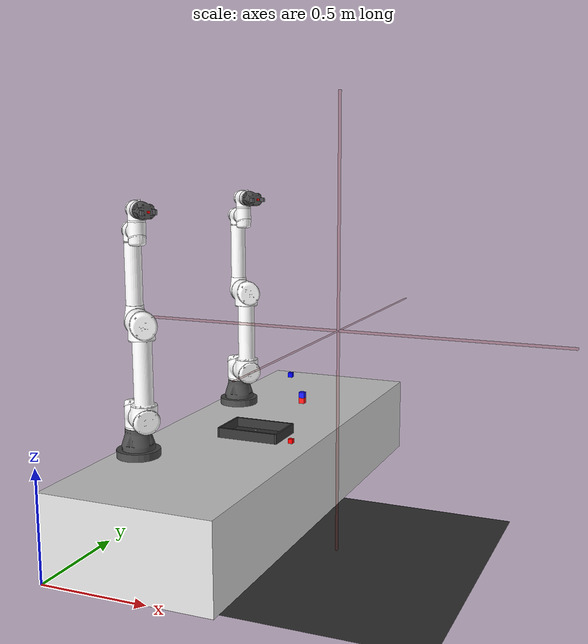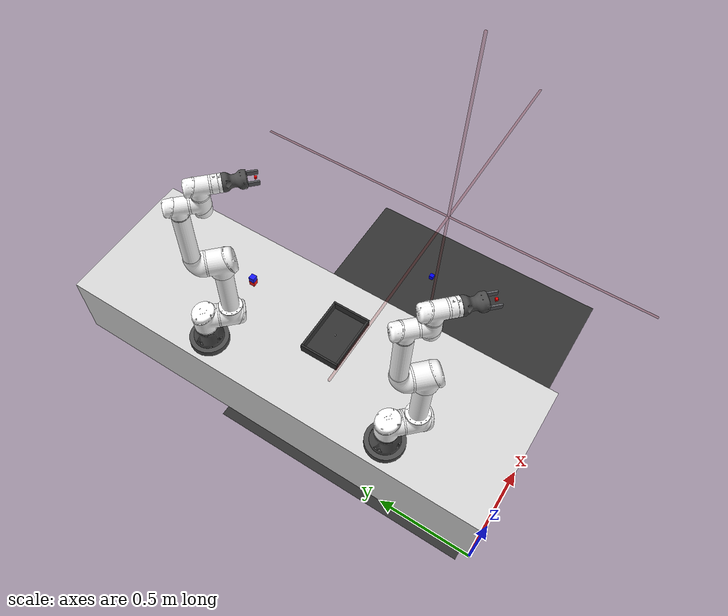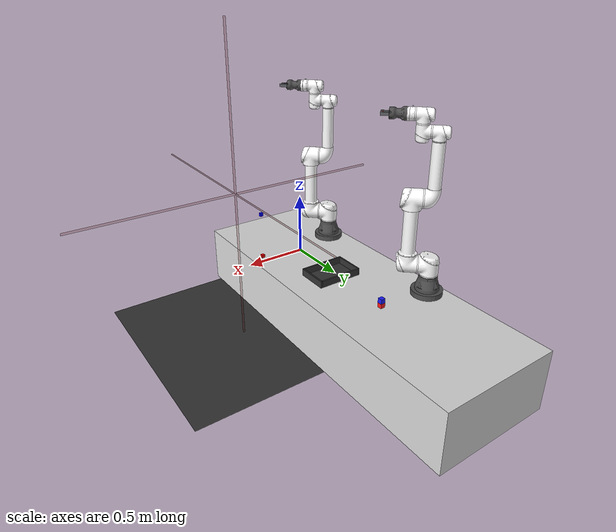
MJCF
<mujoco model="ur5">
	<compiler angle="radian" coordinate="local" meshdir="../assets/meshes" texturedir="../assets/textures"/>
	<option timestep="0.002"
            impratio="20"
			noslip_tolerance="1e-10"
            noslip_iterations="100"
            cone="elliptic">
	</option>

    <include file="shared.xml"/>

    <equality>
        <weld body1="robot1:mocap" body2="robot1:robotiq_tcp" solimp="0.9 0.95 0.001" solref="0.02 1"/>
        <weld body1="robot0:mocap" body2="robot0:robotiq_tcp" solimp="0.9 0.95 0.001" solref="0.02 1"/>
    </equality>

    <contact>
        <exclude body1="robot1:left_finger" body2="robot1:right_finger"/>
        <exclude body1="robot0:left_finger" body2="robot0:right_finger"/>
    </contact>

	<worldbody>
		<geom name="floor0" pos="0.8 0.75 0" size="0.85 0.7 1" type="plane" condim="3" material="floor_mat" />
		<body name="floor0" pos="0.8 0.75 0">
			<site name="target0" pos="0 0 0.5" size="0.01 0.01 0.01" rgba="1 0 0 1" type="box"/>
			<site name="target1" pos="0 0 0.8" size="0.01 0.01 0.01" rgba="0 0 1 1" type="box"/>
		</body>

        <!--Include the UR robot-->
        <include file="robot0.xml"/>
        <include file="robot1.xml"/>

		<body pos="0.4 1.2 0.2" name="table0">
			<geom size="0.4 1.2 0.2" type="box" name="table0" mass="2000" material="table_mat"/>
		</body>
        <body name="box" pos="0.475 1.075 0.4225">
            <joint name="box:joint" type="free"/>
            <body name="box_bottom" pos="0 0 -0.025" euler="0 0 0">
                <geom size="0.15 0.10 0.005" type="box" condim="3" name="box_bottom" material="block_mat" mass="5"/>
            </body>
            <body name="box_side:0" pos="0 -0.1 0" euler="0 0 0">
                <geom size="0.145 0.005 0.025" type="box" condim="3" name="box_side:0" material="block_mat" mass="5"/>
            </body>
            <body name="box_side:1" pos="0 0.1 0" euler="0 0 0">
                <geom size="0.145 0.005 0.025" type="box" condim="3" name="box_side:1" material="block_mat" mass="5"/>
            </body>
            <body name="box_side:2" pos="-0.15 0 0" euler="0 0 0">
                <geom size="0.005 0.105 0.025" type="box" condim="3" name="box_side:2" material="block_mat" mass="5"/>
            </body>
            <body name="box_side:3" pos="0.15 0 0" euler="0 0 0">
                <geom size="0.005 0.105 0.025" type="box" condim="3" name="box_side:3" material="block_mat" mass="5"/>
            </body>
            <site name="box" pos="0 0 0"/>
		</body>

		<body name="object0" pos="0.50 1.60 0.45">
			<joint name="object0:joint" type="free" frictionloss="0" damping="0"/>
			<geom size="0.015 0.015 0.015" type="box" name="object0" material="block0_mat" mass="2" condim="3" friction="1.2 0.05 0.01"/>
			<site name="object0" pos="0 0 0" size="0.01 0.01 0.01" rgba="1 0 0 1" type="sphere"/>
		</body>

		<body name="object1" pos="0.50 1.60 0.48">
			<joint name="object1:joint" type="free" frictionloss="0" damping="0"/>
			<geom size="0.015 0.015 0.015" type="box" name="object1" material="block1_mat" mass="2" condim="3" friction="1.2 0.05 0.01"/>
			<site name="object1" pos="0 0 0" size="0.01 0.01 0.01" rgba="1 0 0 1" type="sphere"/>
		</body>

		<light directional="true" ambient="0.1 0.1 0.1" diffuse="0.8 0.8 0.8" specular="0.3 0.3 0.3" castshadow="false" pos="0 0 4" dir="0 0 -1" name="light0"/>
	</worldbody>

    <actuator>
		<position ctrllimited="true" ctrlrange="0 1" joint="robot0:joint7_l" kp="20000" name="robot0:l_gripper_finger_joint" user="1"/>
		<position ctrllimited="true" ctrlrange="0 1" joint="robot0:joint7_r" kp="20000" name="robot0:r_gripper_finger_joint" user="1"/>
		<position ctrllimited="true" ctrlrange="0 1" joint="robot1:joint7_l" kp="20000" name="robot1:l_gripper_finger_joint" user="1"/>
		<position ctrllimited="true" ctrlrange="0 1" joint="robot1:joint7_r" kp="20000" name="robot1:r_gripper_finger_joint" user="1"/>
    </actuator>
</mujoco>

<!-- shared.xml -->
<!--FROM https://github.com/openai/gym/blob/master/gym/envs/robotics/assets/fetch/shared.xml-->
<mujoco>
    <asset>
        <texture type="skybox" builtin="gradient" rgb1="0.85 0.85 0.85" rgb2="0.46 0.46 0.46" width="32" height="32"/>

        <material name="floor_mat" specular="0" shininess="0.5" reflectance="0" rgba="0.2 0.2 0.2 1"/>
        <material name="table_mat" specular="0" shininess="0.5" reflectance="0" rgba="0.85 0.85 0.85 1"/>
        <material name="block_mat" specular="0" shininess="0.5" reflectance="0" rgba="0.2 0.2 0.2 1"/>
        <material name="block0_mat" specular="0" shininess="0.8" reflectance="0.1" rgba="1 0.1 0.1 1"/>
        <material name="block1_mat" specular="0" shininess="0.8" reflectance="0.1" rgba="0.1 0.1 1 1"/>
        <material name="puck_mat" specular="0" shininess="0.5" reflectance="0" rgba="0.2 0.2 0.2 1"/>
        <material name="robot:geomMat" shininess="0.03" specular="0.4"/>
        <material name="robot:gripper_finger_mat" shininess="0.03" specular="0.4" reflectance="0"/>
        <material name="robot:gripper_mat" shininess="0.03" specular="0.4" reflectance="0"/>
        <material name="robot:arm_mat" shininess="0.03" specular="0.4" reflectance="0"/>
        <material name="robot:base_mat" shininess="0.03" specular="0.4" reflectance="0"/>

        <mesh file="table.stl" />
        <!-- UR5 specififc meshes-->
        <mesh file="base.stl" />
        <mesh file="standoff.stl" />
        <mesh file="shoulder.stl" />
        <mesh file="upperarm.stl" />
        <mesh file="forearm.stl" />
        <mesh file="wrist1.stl" />
        <mesh file="wrist2.stl" />
        <mesh file="wrist3.stl" />
        <mesh file="robotiq_coupler.stl" />
        <mesh file="robotiq_gripper.stl" />
        <mesh file="robotiq_finger.stl" />

        <!-- new UR meshes -->
        <!-- arm models -->
        <mesh file="link0.stl"/>
        <mesh file="link1.stl"/>
        <mesh file="link1_cap.stl" />
        <mesh file="link1_connector.stl" />
        <mesh file="link2.stl" />
        <mesh file="link2_tube.stl" />
        <mesh file="link2_cap.stl" />
        <mesh file="link2_connector.stl" />
        <mesh file="link3a.stl" />
        <mesh file="link3a_connector.stl" />
        <mesh file="link3_tube.stl" />
        <mesh file="link3_cap.stl" />
        <mesh file="link3b.stl" />
        <mesh file="link3b_connector.stl" />
        <mesh file="link3b_connector2.stl"/>
        <mesh file="link4.stl" />
        <mesh file="link4_cap.stl" />
        <mesh file="link4_connector.stl" />
        <mesh file="link5.stl" />
        <mesh file="link5_cap.stl" />
        <mesh file="link5_connector.stl" />
        <mesh file="link6.stl" />
        <mesh file="link6_connector.stl" />

        <material name="silver" specular="1" shininess="0.5" reflectance="1" emission="0.25" rgba="0.82 0.82 0.82 1"/>
        <material name="grey" specular="1" shininess="0.5" reflectance="1" emission="0.1" rgba="0.5 0.5 0.5 1"/>
        <material name="blue" specular="1" shininess="0.5" reflectance="1" emission="0" rgba="0.678 0.847 0.902 1"/>
        <material name="black" specular="1" shininess="0.5" reflectance="1" emission="0" rgba="0.2 0.2 0.2 1"/>

        <material name="Light" specular="0" shininess="0.6" reflectance="0.9" rgba="0.5 0.5 1 1" emission="0.7"/>
    </asset>

    <default>
        <default class="robot:ur5">
            <geom margin="0.001" material="robot:geomMat" rgba="1 1 1 1" solimp="0.99 0.99 0.01" solref="0.01 1" type="mesh" user="0"/>

            <default class="robot:robotiqGripper">
                <geom condim="4" margin="0.001" type="box" user="0" rgba="0.356 0.361 0.376 1.0"/>
                <joint armature="1" damping="10000" limited="true" solreflimit="-1000 0" type="slide"/>
            </default>

            <default class="robot:grey">
                <geom rgba="0.3 0.3 0.3 1.0"/>
            </default>

            <default class="robot:blue">
                <geom rgba="0.086 0.506 0.767 1.0"/>
            </default>

        </default>
    </default>
</mujoco>

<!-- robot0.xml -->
<mujoco>
    <body mocap="true" name="robot0:mocap" pos="1 0.8 1">
		<geom conaffinity="0" contype="0" pos="0 0 0" rgba="0.5 0 0 0.7" size="0.005 0.005 0.005" type="box"/>
		<geom conaffinity="0" contype="0" pos="0 0 0" rgba="0.5 0 0 0.1" size="1 0.005 0.005" type="box"/>
		<geom conaffinity="0" contype="0" pos="0 0 0" rgba="0.5 0 0 0.1" size="0.005 1 0.001" type="box"/>
		<geom conaffinity="0" contype="0" pos="0 0 0" rgba="0.5 0 0 0.1" size="0.005 0.005 1" type="box"/>
	</body>

    <body childclass="robot:ur5" name="robot0:base_link" pos="0.125 0.575 0.4" quat="0.3826834324 0 0 0.9238795325">
        <inertial pos="0 0 0" quat="0.5 0.5 -0.5 0.5" mass="4" diaginertia="0.0072 0.00443333 0.00443333" />
        <geom name="robot0:standoff" type="cylinder" euler="0 0 0"  size="0.1 0.035" material="robot:base_mat" class="robot:grey"/>
        <geom name="robot0:base_mesh" type="mesh" pos="0 0 0.035" euler="1.57 0 0" mesh="base" material="robot:base_mat" class="robot:grey"/>
        <site name="robot0:base" pos="0 0 0" rgba="0 0 0 0" size="0.02 0.02 0.02"/>
        <body name="robot0:link1" pos="0 0 0.135">
            <joint name="robot0:joint1" axis="0 0 1" pos="0 0 0"/>
            <inertial pos="0 -0.02561 0.00193" mass="3.761" diaginertia="0.1 0.1 0.1"/>
            <geom name="robot0:link1_connector" type="mesh" mesh="link1_connector" pos="0 0 0" material="black"
                conaffinity="32" contype="32"/>
            <geom name="robot0:link1" type="mesh" mesh="link1" pos="0 0 0.008" material="grey"/>
            <geom name="robot0:link1_cap" type="mesh" mesh="link1_cap" pos="0 0 .1025" material="blue"/>

            <body name="robot0:link2" pos="-0.0663 0 0.0679">
                <joint name="robot0:joint2" axis="-1 0 0" pos="0 0 0"/>
                <inertial pos="-0.04706 0 0.2125" mass="8.058" diaginertia="0.1 0.1 0.1"/>
                <geom name="robot0:link2_connector" type="mesh" mesh="link2_connector" pos="0 0 0" material="black"
                    conaffinity="32" contype="32"/>
                <geom name="robot0:link2" type="mesh" mesh="link2" pos="-0.008 0 0" material="grey"/>
                <geom name="robot0:link2_cap" type="mesh" mesh="link2_cap" pos="-0.1015 0 -0.0025" material="blue"/>
                <geom name="robot0:link2_tube" type="mesh" mesh="link2_tube" pos="-0.0679 0 0.066" material="silver"/>

                <body name="robot0:link3" pos="-0.008 0 0.425">
                    <joint name="robot0:joint3" axis="1 0 0" pos="0 0 0"/>
                    <inertial pos="0.0478 0 0.15" mass="2.846" diaginertia="0.1 0.1 0.1"/>
                    <geom name="robot0:link3a_connector" type="mesh" mesh="link3a_connector" pos="0 0 0" material="black"
                        conaffinity="32" contype="32"/>
                    <geom name="robot0:link3a" type="mesh" mesh="link3a" pos="0.008 0 0" material="grey"/>
                    <geom name="robot0:link3_tube" type="mesh" mesh="link3_tube" pos="0.059 0 0.066" material="silver"/>
                    <geom name="robot0:link3b_connector" type="mesh" mesh="link3b_connector" pos="0.059 0 0.3418" material="black" />
                    <geom name="robot0:link3b_connector2" type="mesh" mesh="link3b_connector2" pos="0.059 0 0.34" material="grey"
                        conaffinity="32" contype="32"/>
                    <geom name="robot0:link3b" type="mesh" mesh="link3b" pos="0.059 0 0.347" material="grey"/>
                    <geom name="robot0:link3_cap" type="mesh" mesh="link3_cap" pos="0.0837 0 0.392" material="blue"/>

                    <body name="robot0:link4" pos="0.0173 0 0.3922">
                        <joint name="robot0:joint4" axis="-1 0 0" pos="0 0 0"/>
                        <inertial pos="-0.05796 -0.0018 0" mass="1.37" diaginertia="0.1 0.1 0.1"/>
                        <geom name="robot0:link4_connector" type="mesh" mesh="link4_connector" pos="0 0 0" material="black"
                            conaffinity="32" contype="32"/>
                        <geom name="robot0:link4" type="mesh" mesh="link4" pos="-0.008 0 0" material="grey"/>
                        <geom name="robot0:link4_cap" type="mesh" mesh="link4_cap" pos="-0.05325 0 -0.0247" material="blue"/>

                        <body name="robot0:link5" pos="-0.05325 0 0.04165">
                            <joint name="robot0:joint5" axis="0 0 1" pos="0 0 0"/>
                            <inertial pos="0.0018 0 0.01634" mass="1.3" diaginertia="0.1 0.1 0.1"/>
                            <geom name="robot0:link5_connector" type="mesh" mesh="link5_connector" pos="0 0 0" material="black"
                                conaffinity="32" contype="32"/>
                            <geom name="robot0:link5" type="mesh" mesh="link5" pos="0 0 0.0079" material="grey"/>
                            <geom name="robot0:link5_cap" type="mesh" mesh="link5_cap" pos="0.025 0 0.053" material="blue"/>

                            <body name="robot0:link6" pos="-0.04165 0 0.05305">
                                <joint name="robot0:joint6" axis="-1 0 0" pos="0 0 0"/>
                                <inertial pos="-0.038841 0 0" mass="0.365" diaginertia="0.1 0.1 0.1"/>
                                <geom name="robot0:link6_connector" type="mesh" mesh="link6_connector" pos="0 0 0" material="black"
                                    conaffinity="32" contype="32"/>
                                <geom name="robot0:link6" type="mesh" mesh="link6" pos="-0.008 0 0" material="silver"/>

                                <body name="robot0:EE" pos="0 0 0" euler="0 0 0"/>
                                <body name="robot0:robot0:ee_link" pos="-0.037 0 0" euler="0 -1.57 0">
                                    <inertial pos="0 0.0823 0" euler="0 0 0" mass="0" diaginertia="0 0 0" />
                                    <geom name="robot0:robotiq_coupler_mesh" type="mesh" mesh="robotiq_coupler" pos="0 0 0.005" material="robot:gripper_mat" />
                                    <body name="robot0:robotiq_base_link" pos="0 0 0.095" euler="0 0 0">
                                        <geom name="robot0:robotiq_base" type="mesh" mesh="robotiq_gripper" pos="0 0 0" euler="1.5707 0 0" material="robot:gripper_mat" class="robot:grey"/>
                                        <body name="robot0:robotiq_tcp" pos="0 0 0.047" euler="0 0 0">

                                            <body name="robot0:right_finger" pos="-0.005 -0.027 -0.01" euler="1.5707 0 -1.5707">
                                                <inertial diaginertia="0.1 0.1 0.1" mass="4" pos="-0.01 0 0"/>
                                                <joint name='robot0:joint7_r' type='slide' axis='0 0 -1' range='0 0.035' armature="100"  limited="true" solimplimit="0.99 0.999 0.01" solreflimit="0.01 1" />
                                                <geom pos="0 0.005 0" size="0.023 0.01 0.004" rgba="0.356 0.361 0.376 1.0" type="box" name="robot0:robotiq_finger_mesh_r" material="robot:gripper_finger_mat" condim="4" friction="1.2 0.05 0.01" margin="0.00001" solimp="0.99 0.99 .001" solref="-100000 -150"/>
                                            </body>

                                            <body name="robot0:left_finger" pos="0.0025 0.027 -0.01" euler="-1.5707 0 1.5707">
                                                <inertial diaginertia="0.1 0.1 0.1" mass="4" pos="-0.01 0 0"/>
                                                <joint name='robot0:joint7_l' type='slide' axis='0 0 -1' range='0 0.035'  armature="100"  limited="true" solimplimit="0.99 0.999 0.01" solreflimit="0.01 1"/>
                                                <geom pos="0 0.005 0" size="0.023 0.01 0.004" rgba="0.356 0.361 0.376 1.0" type="box" name="robot0:robotiq_finger_mesh_l" material="robot:gripper_finger_mat" condim="4" friction="1.2 0.05 0.01" margin="0.00001" solimp="0.99 0.99 .001" solref="-100000 -150"/>
                                            </body>
                                            <site name="robot0:grip" pos="0 0 0" rgba="1 0 0 1" size="0.005 0.005 0.005" type="box"/>
                                        </body>
                                    </body>
                                </body>
                            </body>
                        </body>
                    </body>
                </body>
            </body>
        </body>
    </body>
</mujoco>

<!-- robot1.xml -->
<mujoco>
    <body mocap="true" name="robot1:mocap" pos="1 0.8 1">
		<geom conaffinity="0" contype="0" pos="0 0 0" rgba="0.5 0 0 0.7" size="0.005 0.005 0.005" type="box"/>
		<geom conaffinity="0" contype="0" pos="0 0 0" rgba="0.5 0 0 0.1" size="1 0.005 0.005" type="box"/>
		<geom conaffinity="0" contype="0" pos="0 0 0" rgba="0.5 0 0 0.1" size="0.005 1 0.001" type="box"/>
		<geom conaffinity="0" contype="0" pos="0 0 0" rgba="0.5 0 0 0.1" size="0.005 0.005 1" type="box"/>
	</body>
    <body childclass="robot:ur5" name="robot1:base_link" pos="0.125 1.60 0.4" quat="0.3826834324 0 0 0.9238795325">
        <inertial pos="0 0 0" quat="0.5 0.5 -0.5 0.5" mass="4" diaginertia="0.0072 0.00443333 0.00443333" />
        <geom name="robot1:standoff" type="cylinder" euler="0 0 0"  size="0.1 0.035" material="robot:base_mat" class="robot:grey"/>
        <geom name="robot1:base_mesh" type="mesh" pos="0 0 0.035" euler="1.57 0 0" mesh="base" material="robot:base_mat" class="robot:grey"/>
        <site name="robot1:base" pos="0 0 0" rgba="0 0 0 0" size="0.02 0.02 0.02"/>
        <body name="robot1:link1" pos="0 0 0.135">
            <joint name="robot1:joint1" axis="0 0 1" pos="0 0 0"/>
            <inertial pos="0 -0.02561 0.00193" mass="3.761" diaginertia="0.1 0.1 0.1"/>
            <geom name="robot1:link1_connector" type="mesh" mesh="link1_connector" pos="0 0 0" material="black"
                conaffinity="32" contype="32"/>
            <geom name="robot1:link1" type="mesh" mesh="link1" pos="0 0 0.008" material="grey"/>
            <geom name="robot1:link1_cap" type="mesh" mesh="link1_cap" pos="0 0 .1025" material="blue"/>

            <body name="robot1:link2" pos="-0.0663 0 0.0679">
                <joint name="robot1:joint2" axis="-1 0 0" pos="0 0 0"/>
                <inertial pos="-0.04706 0 0.2125" mass="8.058" diaginertia="0.1 0.1 0.1"/>
                <geom name="robot1:link2_connector" type="mesh" mesh="link2_connector" pos="0 0 0" material="black"
                    conaffinity="32" contype="32"/>
                <geom name="robot1:link2" type="mesh" mesh="link2" pos="-0.008 0 0" material="grey"/>
                <geom name="robot1:link2_cap" type="mesh" mesh="link2_cap" pos="-0.1015 0 -0.0025" material="blue"/>
                <geom name="robot1:link2_tube" type="mesh" mesh="link2_tube" pos="-0.0679 0 0.066" material="silver"/>

                <body name="robot1:link3" pos="-0.008 0 0.425">
                    <joint name="robot1:joint3" axis="1 0 0" pos="0 0 0"/>
                    <inertial pos="0.0478 0 0.15" mass="2.846" diaginertia="0.1 0.1 0.1"/>
                    <geom name="robot1:link3a_connector" type="mesh" mesh="link3a_connector" pos="0 0 0" material="black"
                        conaffinity="32" contype="32"/>
                    <geom name="robot1:link3a" type="mesh" mesh="link3a" pos="0.008 0 0" material="grey"/>
                    <geom name="robot1:link3_tube" type="mesh" mesh="link3_tube" pos="0.059 0 0.066" material="silver"/>
                    <geom name="robot1:link3b_connector" type="mesh" mesh="link3b_connector" pos="0.059 0 0.3418" material="black" />
                    <geom name="robot1:link3b_connector2" type="mesh" mesh="link3b_connector2" pos="0.059 0 0.34" material="grey"
                        conaffinity="32" contype="32"/>
                    <geom name="robot1:link3b" type="mesh" mesh="link3b" pos="0.059 0 0.347" material="grey"/>
                    <geom name="robot1:link3_cap" type="mesh" mesh="link3_cap" pos="0.0837 0 0.392" material="blue"/>

                    <body name="robot1:link4" pos="0.0173 0 0.3922">
                        <joint name="robot1:joint4" axis="-1 0 0" pos="0 0 0"/>
                        <inertial pos="-0.05796 -0.0018 0" mass="1.37" diaginertia="0.1 0.1 0.1"/>
                        <geom name="robot1:link4_connector" type="mesh" mesh="link4_connector" pos="0 0 0" material="black"
                            conaffinity="32" contype="32"/>
                        <geom name="robot1:link4" type="mesh" mesh="link4" pos="-0.008 0 0" material="grey"/>
                        <geom name="robot1:link4_cap" type="mesh" mesh="link4_cap" pos="-0.05325 0 -0.0247" material="blue"/>

                        <body name="robot1:link5" pos="-0.05325 0 0.04165">
                            <joint name="robot1:joint5" axis="0 0 1" pos="0 0 0"/>
                            <inertial pos="0.0018 0 0.01634" mass="1.3" diaginertia="0.1 0.1 0.1"/>
                            <geom name="robot1:link5_connector" type="mesh" mesh="link5_connector" pos="0 0 0" material="black"
                                conaffinity="32" contype="32"/>
                            <geom name="robot1:link5" type="mesh" mesh="link5" pos="0 0 0.0079" material="grey"/>
                            <geom name="robot1:link5_cap" type="mesh" mesh="link5_cap" pos="0.025 0 0.053" material="blue"/>

                            <body name="robot1:link6" pos="-0.04165 0 0.05305">
                                <joint name="robot1:joint6" axis="-1 0 0" pos="0 0 0"/>
                                <inertial pos="-0.038841 0 0" mass="0.365" diaginertia="0.1 0.1 0.1"/>
                                <geom name="robot1:link6_connector" type="mesh" mesh="link6_connector" pos="0 0 0" material="black"
                                    conaffinity="32" contype="32"/>
                                <geom name="robot1:link6" type="mesh" mesh="link6" pos="-0.008 0 0" material="silver"/>

                                <body name="robot1:EE" pos="0 0 0" euler="0 0 0"/>
                                <body name="robot1:ee_link" pos="-0.037 0 0" euler="0 -1.57 0">
                                    <inertial pos="0 0.0823 0" euler="0 0 0" mass="0" diaginertia="0 0 0" />
                                    <geom name="robot1:robotiq_coupler_mesh" type="mesh" mesh="robotiq_coupler" pos="0 0 0.005" material="robot:gripper_mat" />
                                    <body name="robot1:robotiq_base_link" pos="0 0 0.095" euler="0 0 0">
                                        <geom name="robot1:robotiq_base" type="mesh" mesh="robotiq_gripper" pos="0 0 0" euler="1.5707 0 0" material="robot:gripper_mat" class="robot:grey"/>
                                        <body name="robot1:robotiq_tcp" pos="0 0 0.047" euler="0 0 0">

                                            <body name="robot1:right_finger" pos="-0.005 -0.027 -0.01" euler="1.5707 0 -1.5707">
                                                <inertial diaginertia="0.1 0.1 0.1" mass="4" pos="-0.01 0 0"/>
                                                <joint name='robot1:joint7_r' type='slide' axis='0 0 -1' range='0 0.035' armature="100" damping="20000" limited="true" solimplimit="0.99 0.999 0.01" solreflimit="0.01 1" />
                                                <geom pos="0 0.005 0" size="0.023 0.01 0.004" rgba="0.356 0.361 0.376 1.0" type="box" name="robot1:robotiq_finger_mesh_r" material="robot:gripper_finger_mat" condim="4" friction="1.2 0.05 0.01" margin="0.00001" solimp="0.99 0.99 .001" solref="-100000 -150"/>
                                            </body>

                                            <body name="robot1:left_finger" pos="0.0025 0.027 -0.01" euler="-1.5707 0 1.5707">
                                                <inertial diaginertia="0.1 0.1 0.1" mass="4" pos="-0.01 0 0"/>
                                                <joint name='robot1:joint7_l' type='slide' axis='0 0 -1' range='0 0.035'  armature="100" damping="20000" limited="true" solimplimit="0.99 0.999 0.01" solreflimit="0.01 1"/>
                                                <geom pos="0 0.005 0" size="0.023 0.01 0.004" rgba="0.356 0.361 0.376 1.0" type="box" name="robot1:robotiq_finger_mesh_l" material="robot:gripper_finger_mat" condim="4" friction="1.2 0.05 0.01" margin="0.00001" solimp="0.99 0.99 .001" solref="-100000 -150"/>
                                            </body>
                                            <site name="robot1:grip" pos="0 0 0" rgba="1 0 0 1" size="0.005 0.005 0.005" type="box"/>
                                        </body>
                                    </body>
                                </body>
                            </body>
                        </body>
                    </body>
                </body>
            </body>
        </body>
    </body>
</mujoco>
